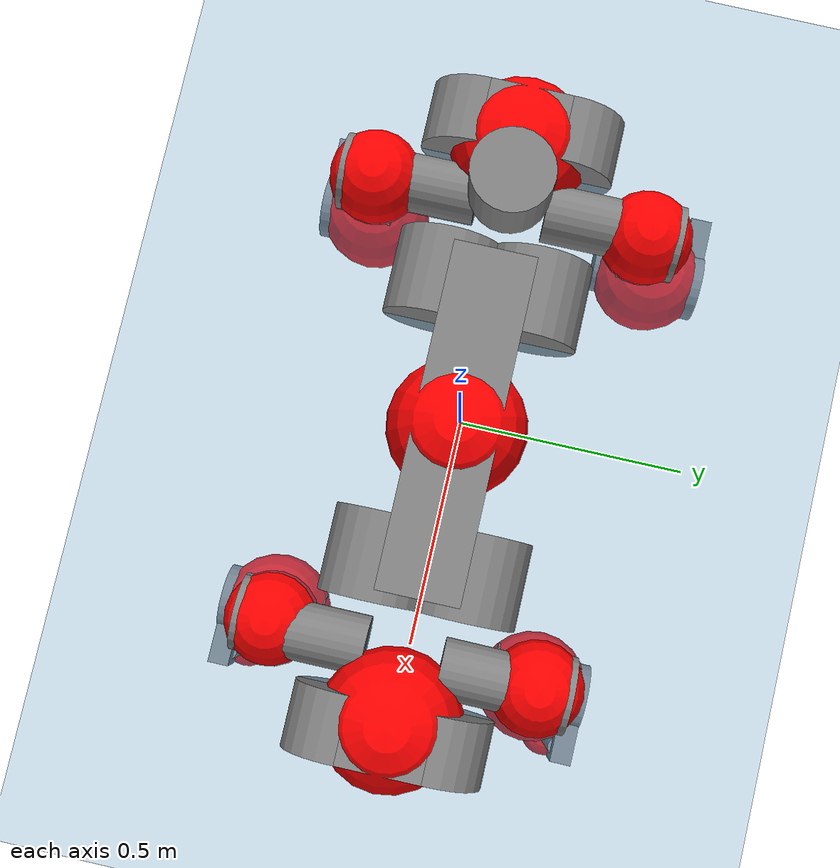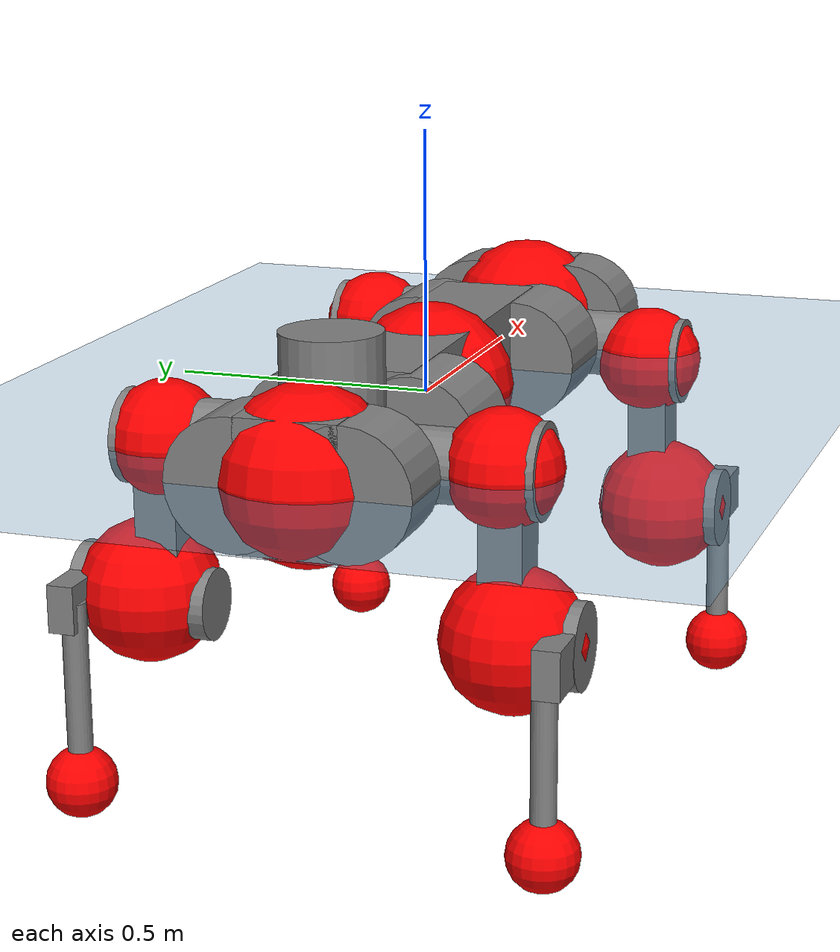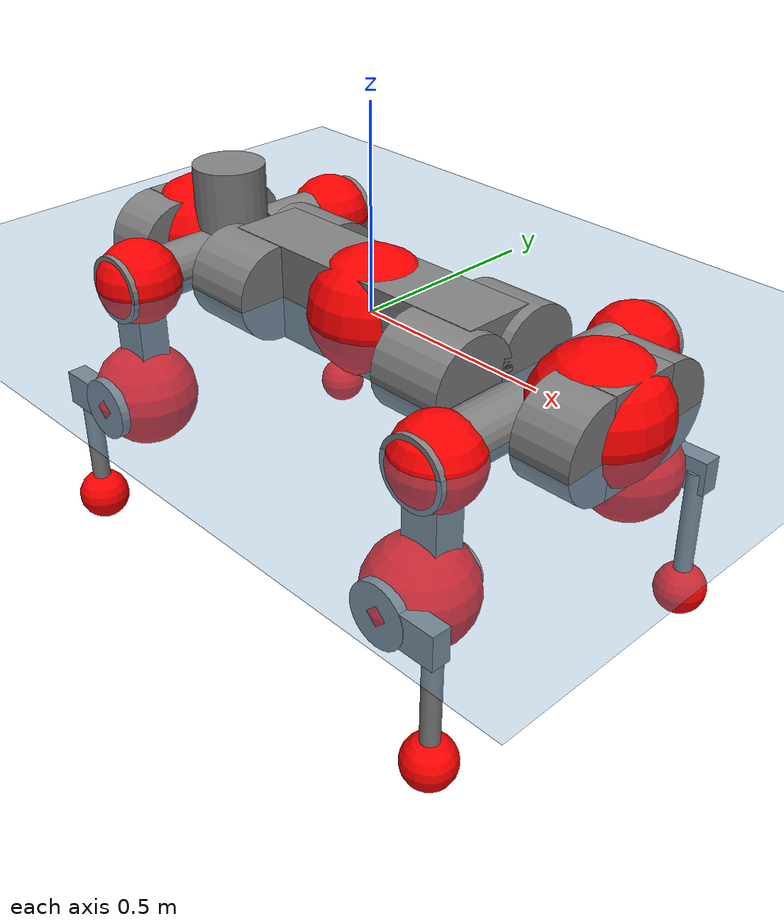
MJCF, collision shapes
<mujoco model="anymal_c">
  <compiler angle="radian" assetdir="assets" balanceinertia="true" inertiafromgeom="false"/>

  <option timestep="0.005" density="1.2" viscosity="2e-05"/>

  <size nkey="1"/>

  <visual>
    <quality shadowsize="8192"/>
    <map shadowclip="0.5"/>
  </visual>

  <default>
    <default class="/">
      <material specular="0" shininess="0.25"/>
      <geom contype="0" conaffinity="0" group="1" solref="-1000 -80"/>
      <site size="0.01 0.005 0.005" group="5"/>
      <general forcelimited="true" forcerange="-80 80" biastype="affine" gainprm="80" biasprm="0 -80 -2"/>
      <default class="anymal_c">
        <joint armature="0.01" damping="0.01" frictionloss="0.1"/>
        <default class="visual">
          <geom type="mesh" group="2"/>
          <default class="visual_zflip"/>
        </default>
        <default class="collision">
          <geom type="cylinder" group="3"/>
          <default class="foot">
            <geom size="0.03 0 0" type="sphere" condim="6" priority="1" friction="0.8 0.02 0.01" solimp="0.015 1 0.03"/>
          </default>
        </default>
      </default>
      <default class="reward_collision_sphere">
        <geom group="5" rgba="1 0 0 1"/>
      </default>
    </default>
  </default>

  <asset>
    <texture type="skybox" colorspace="auto" name="//unnamed_texture_0" builtin="gradient" rgb1="0.95 0.95 0.95" rgb2="0.95 0.95 0.95" width="100" height="600"/>
    <texture type="2d" colorspace="auto" name="texplane" builtin="checker" rgb1="0.345 0.575 0.748" rgb2="0.345 0.575 0.748" markrgb="1 1 1" width="512" height="512"/>
    <texture type="2d" colorspace="linear" name="base" file="base.png"/>
    <texture type="2d" colorspace="linear" name="top_shell" file="top_shell.png"/>
    <texture type="2d" colorspace="linear" name="bottom_shell" file="bottom_shell.png"/>
    <texture type="2d" colorspace="linear" name="remote" file="remote.png"/>
    <texture type="2d" colorspace="linear" name="hatch" file="hatch.png"/>
    <texture type="2d" colorspace="linear" name="handle" file="handle.png"/>
    <texture type="2d" colorspace="linear" name="face" file="face.png"/>
    <texture type="2d" colorspace="linear" name="battery" file="battery.png"/>
    <texture type="2d" colorspace="linear" name="lidar_cage" file="lidar_cage.png"/>
    <texture type="2d" colorspace="linear" name="depth_camera" file="depth_camera.png"/>
    <texture type="2d" colorspace="linear" name="wide_angle_camera" file="wide_angle_camera.png"/>
    <texture type="2d" colorspace="linear" name="lidar" file="lidar.png"/>
    <texture type="2d" colorspace="linear" name="drive" file="drive.png"/>
    <texture type="2d" colorspace="linear" name="hip_l" file="hip_l.png"/>
    <texture type="2d" colorspace="linear" name="shank_l" file="shank_l.png"/>
    <texture type="2d" colorspace="linear" name="foot" file="foot.png"/>
    <texture type="2d" colorspace="linear" name="thigh" file="thigh.png"/>
    <texture type="2d" colorspace="linear" name="shank_r" file="shank_r.png"/>
    <texture type="2d" colorspace="linear" name="hip_r" file="hip_r.png"/>
    <material name="MatPlane" class="/" texture="texplane" texuniform="true" texrepeat="2 2" specular="0.9" shininess="0.5"/>
    <material name="black_plastic" class="/" rgba="0.007 0.007 0.007 1"/>
    <material name="green" class="/" rgba="0.052 0.178 0.033 1"/>
    <material name="red" class="/" rgba="0.178 0.006 0.005 1"/>
    <material name="yellow" class="/" rgba="0.178 0.119 0.006 1"/>
    <material name="lwl" class="/" rgba="0.8 0.8 0.8 1"/>
    <material name="base" class="/" texture="base"/>
    <material name="top_shell" class="/" texture="top_shell"/>
    <material name="bottom_shell" class="/" texture="bottom_shell"/>
    <material name="hip_l" class="/" texture="hip_l"/>
    <material name="thigh" class="/" texture="thigh"/>
    <material name="shank_l" class="/" texture="shank_l"/>
    <material name="foot" class="/" texture="foot"/>
    <material name="hip_r" class="/" texture="hip_r"/>
    <material name="shank" class="/" texture="shank_r"/>
    <material name="hatch" class="/" texture="hatch"/>
    <material name="remote" class="/" texture="remote"/>
    <material name="handle" class="/" texture="handle"/>
    <material name="face" class="/" texture="face"/>
    <material name="depth_camera" class="/" texture="depth_camera"/>
    <material name="wide_angle_camera" class="/" texture="wide_angle_camera"/>
    <material name="battery" class="/" texture="battery"/>
    <material name="lidar_cage" class="/" texture="lidar_cage"/>
    <material name="lidar" class="/" texture="lidar"/>
    <material name="drive" class="/" texture="drive"/>
    <mesh name="base_0" class="/" file="base_0.obj"/>
    <mesh name="base_1" class="/" file="base_1.obj"/>
    <mesh name="base_2" class="/" file="base_2.obj"/>
    <mesh name="base_3" class="/" file="base_3.obj"/>
    <mesh name="base_4" class="/" file="base_4.obj"/>
    <mesh name="base_5" class="/" file="base_5.obj"/>
    <mesh name="top_shell" class="/" file="top_shell.obj"/>
    <mesh name="bottom_shell" class="/" file="bottom_shell.obj"/>
    <mesh name="remote" class="/" file="remote.obj"/>
    <mesh name="handle" class="/" file="handle.obj"/>
    <mesh name="face" class="/" file="face.obj"/>
    <mesh name="wide_angle_camera" class="/" file="wide_angle_camera.obj"/>
    <mesh name="depth_camera" class="/" file="depth_camera.obj"/>
    <mesh name="battery" class="/" file="battery.obj"/>
    <mesh name="lidar_cage" class="/" file="lidar_cage.obj"/>
    <mesh name="lidar" class="/" file="lidar.obj"/>
    <mesh name="drive" class="/" file="drive.obj"/>
    <mesh name="hip_l" class="/" file="hip_l.obj"/>
    <mesh name="thigh" class="/" file="thigh.obj"/>
    <mesh name="shank_l" class="/" file="shank_l.obj"/>
    <mesh name="foot" class="/" file="foot.obj"/>
    <mesh name="hip_r" class="/" file="hip_r.obj"/>
    <mesh name="hatch" class="/" file="hatch.obj"/>
    <mesh name="shank_r" class="/" file="shank_r.obj"/>
  </asset>

  <worldbody>
    <geom name="floor" class="/" size="100 100 0.125" type="plane" group="0" material="MatPlane"/>
    <light name="toplight_shadow" class="/" pos="0 0 5" dir="0.0990148 0.0990148 -0.990148" type="directional" ambient="0.04 0.04 0.04" diffuse="0.55 0.55 0.55" specular="0.12 0.12 0.12"/>
    <light name="toplight_fill" class="/" pos="0 0 5" dir="0.0990148 0.0990148 -0.990148" type="directional" castshadow="false" ambient="0.04 0.04 0.04" diffuse="0.3 0.3 0.3" specular="0.08 0.08 0.08"/>
    <body name="trunk" childclass="anymal_c" pos="0.0133502 -0.00550811 0.0107462" quat="0.999981 -0.00350167 -0.00501244 0.000769908">
      <inertial pos="0.014561 -0.011239 0.0500648" quat="0.508309 0.48 0.552865 0.45339" mass="38.4899" diaginertia="2.84481 3.98895 0.205305"/>
      <joint name="//unnamed_joint_0" type="free" armature="0" damping="0" frictionloss="0"/>
      <geom name="//unnamed_geom_1" class="visual" material="green" mesh="base_0"/>
      <geom name="//unnamed_geom_2" class="visual" material="yellow" mesh="base_1"/>
      <geom name="//unnamed_geom_3" class="visual" material="red" mesh="base_2"/>
      <geom name="//unnamed_geom_4" class="visual" material="black_plastic" mesh="base_3"/>
      <geom name="//unnamed_geom_5" class="visual" material="lwl" mesh="base_4"/>
      <geom name="//unnamed_geom_6" class="visual" material="base" mesh="base_5"/>
      <geom name="trunk_1" class="collision" size="0.383306 0.0925221 0.118957" type="box"/>
      <geom name="trunk_2" class="collision" size="0.118957 0.0958264" pos="0.314941 0.101689 0" quat="0.707107 0 0.707107 0"/>
      <geom name="trunk_3" class="collision" size="0.118957 0.0958264" pos="-0.314941 0.101689 0" quat="0.707107 0 0.707107 0"/>
      <geom name="trunk_4" class="collision" size="0.118957 0.0958264" pos="0.314941 -0.101689 0" quat="0.707107 0 0.707107 0"/>
      <geom name="trunk_5" class="collision" size="0.118957 0.0958264" pos="-0.314941 -0.101689 0" quat="0.707107 0 0.707107 0"/>
      <geom name="//unnamed_geom_12" class="visual" material="top_shell" mesh="top_shell"/>
      <geom name="//unnamed_geom_13" class="visual" material="bottom_shell" mesh="bottom_shell"/>
      <geom name="//unnamed_geom_14" class="visual" material="remote" mesh="remote"/>
      <geom name="//unnamed_geom_15" class="visual" material="handle" mesh="handle"/>
      <geom name="//unnamed_geom_16" class="visual" pos="0.600198 0 0" quat="1 0 0 0" material="face" mesh="face"/>
      <geom name="trunk_6" class="collision" size="0.0726959 0.0925221 0.118957" pos="0.679838 0 0" type="box"/>
      <geom name="//unnamed_geom_18" class="collision" size="0.118957 0.0726959" pos="0.679838 0.101689 0" quat="0.707107 0 0.707107 0"/>
      <geom name="//unnamed_geom_19" class="collision" size="0.118957 0.0726959" pos="0.679838 -0.101689 0" quat="0.707107 0 0.707107 0"/>
      <geom name="//unnamed_geom_20" class="visual" pos="0.668456 0 -0.0281695" quat="0.965926 0 0.258819 0" material="depth_camera" mesh="depth_camera"/>
      <geom name="//unnamed_geom_21" class="visual" pos="0.742827 0 0.0159359" material="wide_angle_camera" mesh="wide_angle_camera"/>
      <geom name="//unnamed_geom_22" class="visual_zflip" pos="-0.600198 0 0" quat="0 0 0 1" material="face" mesh="face"/>
      <geom name="trunk_7" class="collision" size="0.0726959 0.0925221 0.118957" pos="-0.679838 0 0" quat="0 0 0 1" type="box"/>
      <geom name="//unnamed_geom_24" class="collision" size="0.118957 0.0726959" pos="-0.679838 -0.101689 0" quat="0 -0.707107 0 0.707107"/>
      <geom name="//unnamed_geom_25" class="collision" size="0.118957 0.0726959" pos="-0.679838 0.101689 0" quat="0 -0.707107 0 0.707107"/>
      <geom name="//unnamed_geom_26" class="visual" pos="-0.668456 0 -0.0281695" quat="0 -0.258819 0 0.965926" material="depth_camera" mesh="depth_camera"/>
      <geom name="//unnamed_geom_27" class="visual_zflip" pos="-0.742827 0 0.0159359" quat="0 0 0 1" material="wide_angle_camera" mesh="wide_angle_camera"/>
      <geom name="//unnamed_geom_28" class="visual" material="battery" mesh="battery"/>
      <geom name="//unnamed_geom_29" class="visual" pos="0 0.11112 0.0338388" quat="0.683013 -0.183013 0.183013 0.683013" material="depth_camera" mesh="depth_camera"/>
      <geom name="//unnamed_geom_30" class="visual" pos="0 -0.11112 0.0338388" quat="0.683013 0.183013 0.183013 -0.683013" material="depth_camera" mesh="depth_camera"/>
      <geom name="//unnamed_geom_31" class="visual" pos="-0.527074 0 0.0782423" quat="1 0 0 0" material="lidar_cage" mesh="lidar_cage"/>
      <geom name="trunk_8" class="collision" size="0.0925221 0.0793046" pos="-0.527074 0 0.142114"/>
      <geom name="//unnamed_geom_33" class="visual" pos="-0.527074 1.84673e-06 0.151375" quat="0.707107 0 0 -0.707107" material="lidar" mesh="lidar"/>
      <geom name="//unnamed_geom_34" class="visual" pos="0.434257 0.150943 6.69623e-09" quat="0.258819 0.965926 0 0" material="drive" mesh="drive"/>
      <geom name="//unnamed_geom_35" class="visual" pos="0.434257 -0.150943 -6.69623e-09" quat="0.258819 -0.965926 0 0" material="drive" mesh="drive"/>
      <geom name="//unnamed_geom_36" class="visual" pos="-0.434257 0.150943 -6.69623e-09" quat="0 0 0.965926 -0.258819" material="drive" mesh="drive"/>
      <geom name="//unnamed_geom_37" class="visual" pos="-0.434257 -0.150943 6.69623e-09" quat="0 0 -0.965926 -0.258819" material="drive" mesh="drive"/>
      <geom name="//unnamed_geom_38" class="visual" pos="0.167969 0 0.07771" quat="1 0 0 0" material="hatch" mesh="hatch"/>
      <geom name="//unnamed_geom_39" class="reward_collision_sphere" size="0.158609"/>
      <geom name="//unnamed_geom_40" class="reward_collision_sphere" size="0.158609" pos="0.651602 0 0"/>
      <geom name="//unnamed_geom_41" class="reward_collision_sphere" size="0.158609" pos="-0.651602 0 0"/>
      <site name="imu" pos="0.303486 0.105204 0.0935579" size="0.0132174"/>
      <camera name="track" pos="0 -2.90541 0" quat="0.707107 0.707107 0 0" mode="trackcom"/>
      <camera name="ego_camera" pos="0.651602 0 -0.0425808" quat="-0.5 -0.5 0.5 0.5"/>
      <body name="LF_HIP" pos="0.431216 0.153844 0.00849869" quat="0.260777 0.965358 -0.00557153 0.00689691">
        <inertial pos="0.0929622 -0.0259987 -0.0013029" quat="-0.0940279 0.737473 -0.0860209 0.663245" mass="5.11531" diaginertia="0.0291176 0.0246414 0.00306891"/>
        <joint name="LF_HAA" pos="0 0 0" axis="0.998404 0.0556207 -0.00977254" stiffness="0.0118774" range="-1.05012 0.503255" armature="0.00341077" damping="0" frictionloss="0.169652"/>
        <geom name="//unnamed_geom_42" class="visual" pos="0 0.000393909 -6.46992e-05" quat="0.258819 -0.965926 0 0" material="hip_l" mesh="hip_l"/>
        <geom name="//unnamed_geom_43" class="visual" pos="0.0867355 -0.105023 -0.0577635" quat="0.183013 -0.683013 0.683013 0.183013" material="drive" mesh="drive"/>
        <geom name="//unnamed_geom_44" class="collision" size="0.0660872 0.0925221" pos="0.0867355 -0.0173741 -0.00735051" quat="-0.353553 -0.612372 0.612372 -0.353553"/>
        <body name="LF_THIGH" pos="0.0857898 -0.0988087 -0.0377162" quat="0.18345 -0.683285 0.682654 0.182898">
          <inertial pos="0.0481206 0.0167076 -0.242881" quat="0.991319 0.0154907 -0.0646424 0.113439" mass="7.27953" diaginertia="0.169956 0.210497 0.00502565"/>
          <joint name="LF_HFE" pos="0 0 0" axis="0.999532 0.00911351 -0.029191" range="-3.16624 2.78009" armature="0.0209905" damping="0.103324" frictionloss="0.136094"/>
          <geom name="//unnamed_geom_45" class="visual" pos="-9.35228e-05 -1.4737e-07 0" quat="0.707107 0 0 -0.707107" material="thigh" mesh="thigh"/>
          <geom name="//unnamed_geom_46" class="collision" size="0.0859133 0.0528697" pos="0.0579202 0 0" quat="0.5 0.5 -0.5 -0.5"/>
          <geom name="//unnamed_geom_47" class="collision" size="0.0495654 0.0396523 0.186781" pos="0.0434401 0 -0.150432" quat="0.707107 0 0 -0.707107" type="box"/>
          <geom name="//unnamed_geom_48" class="visual" pos="0.145235 0 -0.303388" quat="1 0 0 0" material="drive" mesh="drive"/>
          <geom name="//unnamed_geom_49" class="collision" size="0.0660872 0.0925221" pos="0.0438746 0 -0.303388" quat="0.707107 0 0.707107 0"/>
          <geom name="//unnamed_geom_50" class="reward_collision_sphere" size="0.105739" pos="0.0362001 0 0"/>
          <body name="LF_SHANK" pos="0.126463 -0.0174374 -0.316427" quat="1 0.000107657 0.000128243 -0.000264138">
            <inertial pos="0.0158561 -0.0776285 -0.0987494" quat="0.993503 -0.111566 -0.00253083 -0.0223167" mass="1.04149" diaginertia="0.0523535 0.0627948 0.00145959"/>
            <joint name="LF_KFE" pos="0 0 0" axis="0.999986 -0.00407991 0.0034316" stiffness="0.0899858" range="-3.39526 3.45497" armature="0.0140255" damping="0.0236314" frictionloss="0.166365"/>
            <geom name="//unnamed_geom_51" class="visual" pos="-3.04957e-05 -0.000162605 0" quat="0.707107 0 0 -0.707107" material="shank_l" mesh="shank_l"/>
            <geom name="LF_kfe_act" class="collision" size="0.0793046 0.0264349" pos="0.0289601 0 0" quat="0.5 0.5 -0.5 -0.5"/>
            <geom name="//unnamed_geom_53" class="collision" size="0.0759989 0.0446089 0.0251131" pos="0.0289601 -0.0835291 0" quat="0.5 0.5 -0.5 -0.5" type="box"/>
            <geom name="//unnamed_geom_54" class="visual" pos="0.0188965 -0.127818 -0.359776" quat="0.382683 0 0 -0.92388" material="foot" mesh="foot"/>
            <geom name="LF_calf" class="collision" size="0.0231305 0.186699" pos="0.0188965 -0.127765 -0.179888" quat="0.707107 0 0 -0.707107"/>
            <geom name="LF_foot" class="foot" size="0.0652478" pos="0.0188965 -0.127765 -0.335824" quat="0.707107 0 0 -0.707107"/>
            <geom name="//unnamed_geom_57" class="reward_collision_sphere" size="0.132174" pos="-0.0724002 0 0"/>
            <geom name="//unnamed_geom_58" class="reward_collision_sphere" size="0.0660872" pos="0.0188965 -0.127765 -0.335824"/>
            <site name="LF_foot" class="foot" pos="0.0188965 -0.127765 -0.335824" quat="0.707107 0 0 -0.707107" size="0.0132174"/>
          </body>
        </body>
      </body>
      <body name="RF_HIP" pos="0.423802 -0.161953 -0.0170414" quat="0.258108 -0.966115 0.00124617 0.000192776">
        <inertial pos="0.0897092 0.0351227 -0.0117842" quat="0.166762 0.686988 0.198331 0.678898" mass="5.11896" diaginertia="0.0332958 0.0220015 0.00325771"/>
        <joint name="RF_HAA" pos="0 0 0" axis="0.999988 0.000676487 0.00475838" range="-0.763116 0.638662" armature="0.013494" damping="0.0121167" frictionloss="0.0757043"/>
        <geom name="//unnamed_geom_59" class="visual" pos="0 -0.000393906 -6.46991e-05" quat="0.258819 0.965926 0 0" material="hip_r" mesh="hip_r"/>
        <geom name="//unnamed_geom_60" class="visual" pos="0.0867355 0.105023 -0.0577635" quat="0.183013 0.683013 0.683013 -0.183013" material="drive" mesh="drive"/>
        <geom name="//unnamed_geom_61" class="collision" size="0.0660872 0.0925221" pos="0.0867355 0.0173741 -0.00735051" quat="-0.353553 0.612372 0.612372 0.353553"/>
        <body name="RF_THIGH" pos="0.0764239 0.108478 -0.0301657" quat="0.184112 0.680582 0.684392 -0.185792">
          <inertial pos="0.0457498 0.000247053 -0.244208" quat="0.994183 -0.0540065 -2.7718e-05 0.0931833" mass="5.01204" diaginertia="0.172357 0.15082 0.00445924"/>
          <joint name="RF_HFE" pos="0 0 0" axis="0.999897 0.0105212 -0.00978281" stiffness="0.00921201" range="-2.79938 2.85068" armature="0.0220739" damping="0.0256679" frictionloss="0.0869285"/>
          <geom name="//unnamed_geom_62" class="visual" pos="-9.35228e-05 -1.4737e-07 0" quat="0.707107 0 0 -0.707107" material="thigh" mesh="thigh"/>
          <geom name="//unnamed_geom_63" class="collision" size="0.0859133 0.0528697" pos="0.0579202 0 0" quat="0.5 0.5 0.5 0.5"/>
          <geom name="//unnamed_geom_64" class="collision" size="0.0495654 0.0396523 0.186781" pos="0.0434401 0 -0.150432" quat="0.707107 0 0 0.707107" type="box"/>
          <geom name="//unnamed_geom_65" class="visual" pos="0.145235 0 -0.303388" quat="1 0 0 0" material="drive" mesh="drive"/>
          <geom name="//unnamed_geom_66" class="collision" size="0.0660872 0.0925221" pos="0.0438746 0 -0.303388" quat="0.707107 0 0.707107 0"/>
          <geom name="//unnamed_geom_67" class="reward_collision_sphere" size="0.105739" pos="0.0362001 0 0"/>
          <body name="RF_SHANK" pos="0.140215 -0.00434381 -0.305719" quat="1 -3.68591e-06 9.37934e-07 -3.52302e-06">
            <inertial pos="0.00160011 0.0860657 -0.104827" quat="0.988451 0.141274 0.0486227 0.0253221" mass="1.97891" diaginertia="0.0704823 0.0569173 0.00227915"/>
            <joint name="RF_KFE" pos="0 0 0" axis="0.999195 0.0382744 0.0120273" stiffness="0.00949914" range="-3.19214 3.36089" armature="0.00437811" damping="0.0203386" frictionloss="0.129612"/>
            <geom name="//unnamed_geom_68" class="visual" pos="-3.04956e-05 0.000162604 0" quat="0.707107 0 0 0.707107" material="shank" mesh="shank_r"/>
            <geom name="RF_kfe_act" class="collision" size="0.0793046 0.0264349" pos="0.0289601 0 0" quat="0.5 0.5 0.5 0.5"/>
            <geom name="//unnamed_geom_70" class="collision" size="0.0759989 0.0446089 0.0251131" pos="0.0289601 0.0835291 0" quat="0.5 0.5 0.5 0.5" type="box"/>
            <geom name="//unnamed_geom_71" class="visual" pos="0.0188965 0.127818 -0.359776" quat="0.382683 0 0 0.92388" material="foot" mesh="foot"/>
            <geom name="RF_calf" class="collision" size="0.0231305 0.186699" pos="0.0188965 0.127765 -0.179888" quat="0.707107 0 0 0.707107"/>
            <geom name="RF_foot" class="foot" size="0.02695" pos="0.0188965 0.127765 -0.335824" quat="0.707107 0 0 0.707107"/>
            <geom name="//unnamed_geom_74" class="reward_collision_sphere" size="0.132174" pos="-0.0724002 0 0"/>
            <geom name="//unnamed_geom_75" class="reward_collision_sphere" size="0.0660872" pos="0.0188965 0.127765 -0.335824"/>
            <site name="RF_foot" class="foot" pos="0.0188965 0.127765 -0.335824" quat="0.707107 0 0 0.707107" size="0.0132174"/>
          </body>
        </body>
      </body>
      <body name="LH_HIP" pos="-0.428043 0.161492 0.0166383" quat="-0.000317832 0.00038507 0.966074 -0.258264">
        <inertial pos="0.0800009 0.0264751 0.00756523" quat="0.144391 0.688995 0.106367 0.702228" mass="5.4276" diaginertia="0.0319541 0.0392785 0.00452853"/>
        <joint name="LH_HAA" pos="0 0 0" axis="0.999996 -0.00265442 -0.0002836" range="-0.854733 0.394259" armature="0.0123689" damping="0.0667636" frictionloss="0.0246959"/>
        <geom name="//unnamed_geom_76" class="visual" pos="0 -0.000393906 -6.46991e-05" quat="-0.258819 -0.965926 0 0" material="hip_r" mesh="hip_r"/>
        <geom name="//unnamed_geom_77" class="visual" pos="0.0867355 0.105023 -0.0577635" quat="0.183013 0.683013 0.683013 -0.183013" material="drive" mesh="drive"/>
        <geom name="//unnamed_geom_78" class="collision" size="0.0660872 0.0925221" pos="0.0867355 0.0173741 -0.00735051" quat="-0.353553 0.612372 0.612372 0.353553"/>
        <body name="LH_THIGH" pos="0.0827635 0.112711 -0.0499434" quat="0.182649 0.682668 0.6834 -0.183215">
          <inertial pos="0.0605669 -0.00583846 -0.242994" quat="0.995685 -0.0290885 -0.0872865 0.0120645" mass="6.71948" diaginertia="0.205503 0.163717 0.00606768"/>
          <joint name="LH_HFE" pos="0 0 0" axis="0.996842 -0.0577183 -0.054533" stiffness="0.0419175" range="-2.81606 3.26739" armature="0.00705521" damping="0" frictionloss="0.148826"/>
          <geom name="//unnamed_geom_79" class="visual" pos="-9.35228e-05 -1.4737e-07 0" quat="0.707107 0 0 -0.707107" material="thigh" mesh="thigh"/>
          <geom name="//unnamed_geom_80" class="collision" size="0.0859133 0.0528697" pos="0.0579202 0 0" quat="0.5 0.5 -0.5 -0.5"/>
          <geom name="//unnamed_geom_81" class="collision" size="0.0495654 0.0396523 0.186781" pos="0.0434401 0 -0.150432" quat="0.707107 0 0 -0.707107" type="box"/>
          <geom name="//unnamed_geom_82" class="visual" pos="0.145235 0 -0.303388" quat="1 0 0 0" material="drive" mesh="drive"/>
          <geom name="//unnamed_geom_83" class="collision" size="0.0660872 0.0925221" pos="0.0438746 0 -0.303388" quat="0.707107 0 0.707107 0"/>
          <geom name="//unnamed_geom_84" class="reward_collision_sphere" size="0.105739" pos="0.0362001 0 0"/>
          <body name="LH_SHANK" pos="0.157195 -0.00977405 -0.289548" quat="0.999998 -0.000637609 0.0003256 -0.00165601">
            <inertial pos="-0.00358401 0.100912 -0.0985736" quat="0.987301 0.138773 0.0665426 0.0393899" mass="1.56125" diaginertia="0.0643918 0.0516947 0.00166166"/>
            <joint name="LH_KFE" pos="0 0 0" axis="0.998504 0.00661567 -0.054272" stiffness="0.0934554" range="-3.31117 3.14419" armature="0.00884346" damping="0" frictionloss="0.0548149"/>
            <geom name="//unnamed_geom_85" class="visual" pos="-3.04956e-05 0.000162604 0" quat="-0.707107 0 0 -0.707107" material="shank" mesh="shank_r"/>
            <geom name="LH_kfe_act" class="collision" size="0.0793046 0.0264349" pos="0.0289601 0 0" quat="0.5 0.5 -0.5 -0.5"/>
            <geom name="//unnamed_geom_87" class="collision" size="0.0759989 0.0446089 0.0251131" pos="0.0289601 0.0835291 0" quat="0.5 0.5 -0.5 -0.5" type="box"/>
            <geom name="//unnamed_geom_88" class="visual" pos="0.0188965 0.127818 -0.359776" quat="-0.382683 0 0 -0.92388" material="foot" mesh="foot"/>
            <geom name="LH_calf" class="collision" size="0.0231305 0.186699" pos="0.0188965 0.127765 -0.179888" quat="0.707107 0 0 -0.707107"/>
            <geom name="LH_foot" class="foot" size="0.0260762" pos="0.0188965 0.127765 -0.335824" quat="0.707107 0 0 -0.707107"/>
            <geom name="//unnamed_geom_91" class="reward_collision_sphere" size="0.132174" pos="-0.0724002 0 0"/>
            <geom name="//unnamed_geom_92" class="reward_collision_sphere" size="0.0660872" pos="0.0188965 0.127765 -0.335824"/>
            <site name="LH_foot" class="foot" pos="0.0188965 0.127765 -0.335824" quat="0.707107 0 0 -0.707107" size="0.0132174"/>
          </body>
        </body>
      </body>
      <body name="RH_HIP" pos="-0.435052 -0.143068 0.000399727" quat="0.000514457 0.00270666 -0.964983 -0.262299">
        <inertial pos="0.0792488 -0.0382788 0.00448834" quat="-0.127043 0.710262 -0.135146 0.679061" mass="6.88997" diaginertia="0.0490709 0.0420719 0.00547812"/>
        <joint name="RH_HAA" pos="0 0 0" axis="0.999137 -0.0400466 -0.0110189" stiffness="0.0141337" range="-0.900842 0.783951" armature="0.0201354" damping="0.0818926" frictionloss="0.0737229"/>
        <geom name="//unnamed_geom_93" class="visual" pos="0 0.000393909 -6.46992e-05" quat="-0.258819 0.965926 0 0" material="hip_l" mesh="hip_l"/>
        <geom name="//unnamed_geom_94" class="visual" pos="0.0867355 -0.105023 -0.0577635" quat="-0.183013 0.683013 -0.683013 -0.183013" material="drive" mesh="drive"/>
        <geom name="//unnamed_geom_95" class="collision" size="0.0660872 0.0925221" pos="0.0867355 -0.0173741 -0.00735051" quat="0.353553 0.612372 -0.612372 0.353553"/>
        <body name="RH_THIGH" pos="0.0803803 -0.106668 -0.0615907" quat="-0.182885 0.682721 -0.6834 -0.182782">
          <inertial pos="0.0567718 -0.0133409 -0.261464" quat="0.992994 -0.00414381 -0.0842857 0.0827185" mass="9.97082" diaginertia="0.199535 0.24275 0.00553799"/>
          <joint name="RH_HFE" pos="0 0 0" axis="0.998998 0.0140778 -0.0424876" range="-2.80015 2.81682" armature="0.0105517" damping="0.00731062" frictionloss="0.231289"/>
          <geom name="//unnamed_geom_96" class="visual" pos="-9.35228e-05 -1.4737e-07 0" quat="0.707107 0 0 -0.707107" material="thigh" mesh="thigh"/>
          <geom name="//unnamed_geom_97" class="collision" size="0.0859133 0.0528697" pos="0.0579202 0 0" quat="0.5 0.5 0.5 0.5"/>
          <geom name="//unnamed_geom_98" class="collision" size="0.0495654 0.0396523 0.186781" pos="0.0434401 0 -0.150432" quat="0.707107 0 0 0.707107" type="box"/>
          <geom name="//unnamed_geom_99" class="visual" pos="0.145235 0 -0.303388" quat="1 0 0 0" material="drive" mesh="drive"/>
          <geom name="//unnamed_geom_100" class="collision" size="0.0660872 0.0925221" pos="0.0438746 0 -0.303388" quat="0.707107 0 0.707107 0"/>
          <geom name="//unnamed_geom_101" class="reward_collision_sphere" size="0.105739" pos="0.0362001 0 0"/>
          <body name="RH_SHANK" pos="0.127955 0.00019854 -0.305301" quat="0.999996 -0.00247729 -0.00109 -0.00116795">
            <inertial pos="-0.000765344 -0.0883113 -0.0847358" quat="0.993325 -0.104633 0.014524 -0.0463357" mass="1.84911" diaginertia="0.0812998 0.0731358 0.0016869"/>
            <joint name="RH_KFE" pos="0 0 0" axis="0.998415 -0.0562661 -0.00153447" stiffness="0.0566112" range="-3.10073 2.90723" armature="0.0194887" damping="0.0894076" frictionloss="0.1488"/>
            <geom name="//unnamed_geom_102" class="visual" pos="-3.04957e-05 -0.000162605 0" quat="0.707107 0 0 -0.707107" material="shank_l" mesh="shank_l"/>
            <geom name="RH_kfe_act" class="collision" size="0.0793046 0.0264349" pos="0.0289601 0 0" quat="0.5 0.5 0.5 0.5"/>
            <geom name="//unnamed_geom_104" class="collision" size="0.0759989 0.0446089 0.0251131" pos="0.0289601 -0.0835291 0" quat="0.5 0.5 0.5 0.5" type="box"/>
            <geom name="//unnamed_geom_105" class="visual" pos="0.0188965 -0.127818 -0.359776" quat="0.382683 0 0 -0.92388" material="foot" mesh="foot"/>
            <geom name="RH_calf" class="collision" size="0.0231305 0.186699" pos="0.0188965 -0.127765 -0.179888" quat="0.707107 0 0 0.707107"/>
            <geom name="RH_foot" class="foot" size="0.0494438" pos="0.0188965 -0.127765 -0.335824" quat="0.707107 0 0 0.707107"/>
            <geom name="//unnamed_geom_108" class="reward_collision_sphere" size="0.132174" pos="-0.0724002 0 0"/>
            <geom name="//unnamed_geom_109" class="reward_collision_sphere" size="0.0660872" pos="0.0188965 -0.127765 -0.335824"/>
            <site name="RH_foot" class="foot" pos="0.0188965 -0.127765 -0.335824" quat="0.707107 0 0 0.707107" size="0.0132174"/>
          </body>
        </body>
      </body>
    </body>
  </worldbody>

  <contact>
    <pair class="/" geom1="floor" geom2="LF_foot" name="//unnamed_contact_0"/>
    <pair class="/" geom1="floor" geom2="RF_foot" name="//unnamed_contact_1"/>
    <pair class="/" geom1="floor" geom2="LH_foot" name="//unnamed_contact_2"/>
    <pair class="/" geom1="floor" geom2="RH_foot" name="//unnamed_contact_3"/>
  </contact>

  <actuator>
    <general name="LF_HAA" class="/" joint="LF_HAA" forcerange="-81.765 81.765" gainprm="128.185" biasprm="0 -128.185 -1.59247"/>
    <general name="LF_HFE" class="/" joint="LF_HFE" forcerange="-45.1157 45.1157" gainprm="128.185" biasprm="0 -128.185 -1.59247"/>
    <general name="LF_KFE" class="/" joint="LF_KFE" forcerange="-170.829 170.829" gainprm="128.185" biasprm="0 -128.185 -1.59247"/>
    <general name="RF_HAA" class="/" joint="RF_HAA" forcerange="-88.3137 88.3137" gainprm="128.185" biasprm="0 -128.185 -1.59247"/>
    <general name="RF_HFE" class="/" joint="RF_HFE" forcerange="-58.2896 58.2896" gainprm="128.185" biasprm="0 -128.185 -1.59247"/>
    <general name="RF_KFE" class="/" joint="RF_KFE" forcerange="-30.4003 30.4003" gainprm="128.185" biasprm="0 -128.185 -1.59247"/>
    <general name="LH_HAA" class="/" joint="LH_HAA" forcerange="-39.9844 39.9844" gainprm="128.185" biasprm="0 -128.185 -1.59247"/>
    <general name="LH_HFE" class="/" joint="LH_HFE" forcerange="-64.4458 64.4458" gainprm="128.185" biasprm="0 -128.185 -1.59247"/>
    <general name="LH_KFE" class="/" joint="LH_KFE" forcerange="-96.6438 96.6438" gainprm="128.185" biasprm="0 -128.185 -1.59247"/>
    <general name="RH_HAA" class="/" joint="RH_HAA" forcerange="-117.884 117.884" gainprm="128.185" biasprm="0 -128.185 -1.59247"/>
    <general name="RH_HFE" class="/" joint="RH_HFE" forcerange="-178.07 178.07" gainprm="128.185" biasprm="0 -128.185 -1.59247"/>
    <general name="RH_KFE" class="/" joint="RH_KFE" forcerange="-163.708 163.708" gainprm="128.185" biasprm="0 -128.185 -1.59247"/>
  </actuator>

  <sensor>
    <gyro site="imu" name="imu_angular_velocity"/>
    <velocimeter site="imu" name="imu_linear_velocity"/>
    <framelinvel objtype="site" objname="LF_foot" name="LF_foot_global_linear_velocity"/>
    <framelinvel objtype="site" objname="RF_foot" name="RF_foot_global_linear_velocity"/>
    <framelinvel objtype="site" objname="LH_foot" name="LH_foot_global_linear_velocity"/>
    <framelinvel objtype="site" objname="RH_foot" name="RH_foot_global_linear_velocity"/>
  </sensor>

  <keyframe>
    <key name="home" qpos="0 0 0.55 1 0 0 0 0 0.4 -0.8 0 -0.4 0.8 0 -0.4 0.8 0 0.4 -0.8"/>
  </keyframe>
</mujoco>
